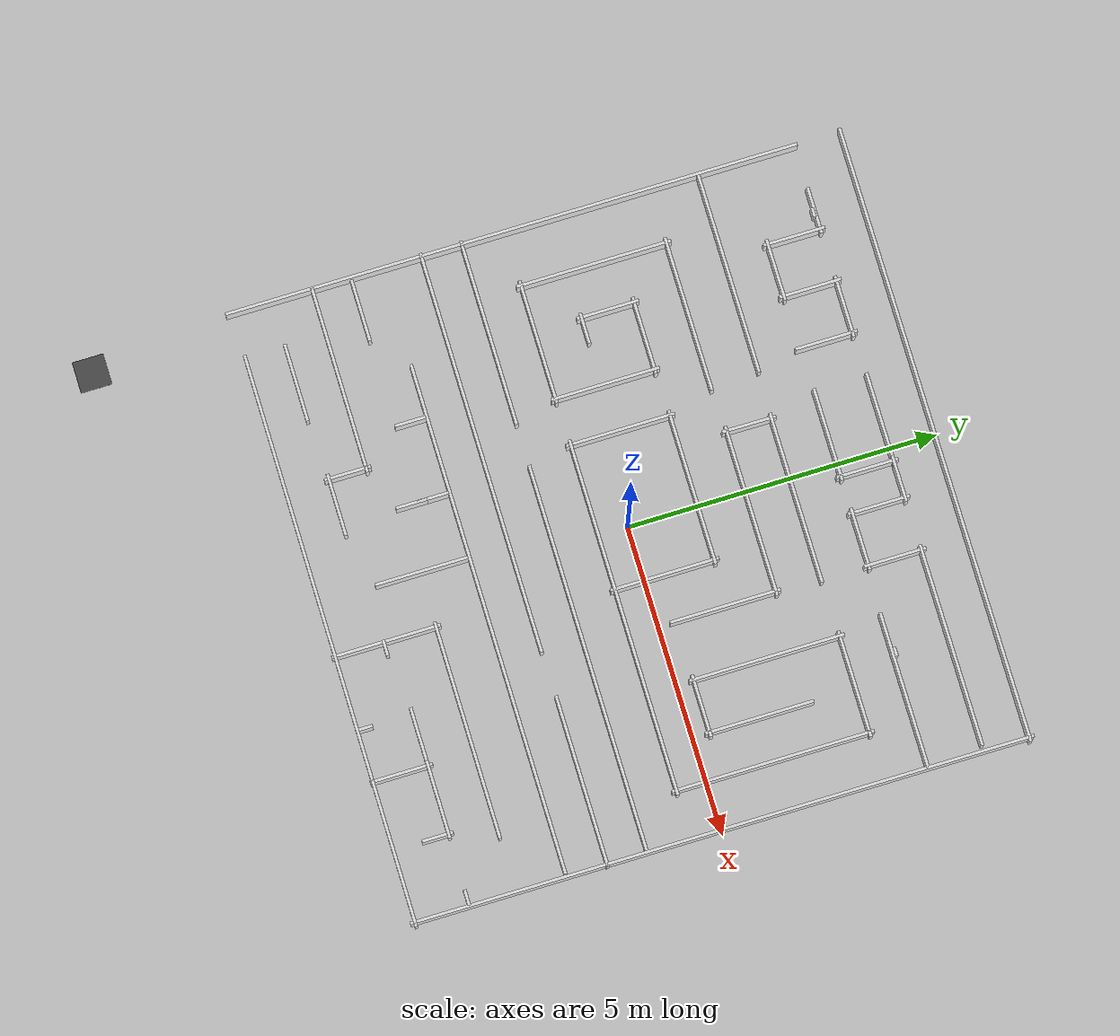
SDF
<sdf version="1.6">
 <world name="default">
  <model name="ground_plane">
   <static>1</static>
   <link name="link">
    <collision name="collision">
     <geometry><plane><normal>0 0 1</normal><size>100 100</size></plane></geometry>
     <surface><friction><ode><mu>100</mu><mu2>50</mu2></ode></friction></surface>
    </collision>
    <visual name="visual">
     <cast_shadows>0</cast_shadows>
     <geometry><plane><normal>0 0 1</normal><size>100 100</size></plane></geometry>
     <material>
      <script><uri>file://media/materials/scripts/gazebo.material</uri><name>Gazebo/Grey</name></script>
     </material>
    </visual>
   </link>
  </model>
  <model name="10x10_maze_2_body">
   <link name="Wall_102">
    <collision name="Wall_102_Collision">
     <geometry><box><size>3.25 0.05 0.4</size></box></geometry>
     <pose>0 0 0.2 0 -0 0</pose>
    </collision>
    <visual name="Wall_102_Visual">
     <pose>0 0 0.2 0 -0 0</pose>
     <geometry><box><size>3.25 0.05 0.4</size></box></geometry>
     <material>
      <script><uri>file://media/materials/scripts/gazebo.material</uri><name>Gazebo/White</name></script>
      <ambient>1 1 1 1</ambient>
     </material>
    </visual>
    <pose>4.15557 1.06055 0 0 0 -1.5708</pose>
   </link>
   <link name="Wall_103">
    <collision name="Wall_103_Collision">
     <geometry><box><size>5.75 0.05 0.4</size></box></geometry>
     <pose>0 0 0.2 0 -0 0</pose>
    </collision>
    <visual name="Wall_103_Visual">
     <pose>0 0 0.2 0 -0 0</pose>
     <geometry><box><size>5.75 0.05 0.4</size></box></geometry>
     <material>
      <script><uri>file://media/materials/scripts/gazebo.material</uri><name>Gazebo/White</name></script>
      <ambient>1 1 1 1</ambient>
     </material>
    </visual>
    <pose>1.35556 -0.489447 0 0 -0 3.14159</pose>
   </link>
   <link name="Wall_104">
    <collision name="Wall_104_Collision">
     <geometry><box><size>1.75 0.05 0.4</size></box></geometry>
     <pose>0 0 0.2 0 -0 0</pose>
    </collision>
    <visual name="Wall_104_Visual">
     <pose>0 0 0.2 0 -0 0</pose>
     <geometry><box><size>1.75 0.05 0.4</size></box></geometry>
     <material>
      <script><uri>file://media/materials/scripts/gazebo.material</uri><name>Gazebo/White</name></script>
      <ambient>1 1 1 1</ambient>
     </material>
    </visual>
    <pose>-1.44443 0.310553 0 0 -0 1.5708</pose>
   </link>
   <link name="Wall_105">
    <collision name="Wall_105_Collision">
     <geometry><box><size>2.5 0.05 0.4</size></box></geometry>
     <pose>0 0 0.2 0 -0 0</pose>
    </collision>
    <visual name="Wall_105_Visual">
     <pose>0 0 0.2 0 -0 0</pose>
     <geometry><box><size>2.5 0.05 0.4</size></box></geometry>
     <material>
      <script><uri>file://media/materials/scripts/gazebo.material</uri><name>Gazebo/White</name></script>
      <ambient>1 1 1 1</ambient>
     </material>
    </visual>
    <pose>-0.269435 1.11055 0 0 -0 0</pose>
   </link>
   <link name="Wall_106">
    <collision name="Wall_106_Collision">
     <geometry><box><size>1.75 0.05 0.4</size></box></geometry>
     <pose>0 0 0.2 0 -0 0</pose>
    </collision>
    <visual name="Wall_106_Visual">
     <pose>0 0 0.2 0 -0 0</pose>
     <geometry><box><size>1.75 0.05 0.4</size></box></geometry>
     <material>
      <script><uri>file://media/materials/scripts/gazebo.material</uri><name>Gazebo/White</name></script>
      <ambient>1 1 1 1</ambient>
     </material>
    </visual>
    <pose>0.905565 0.310553 0 0 0 -1.5708</pose>
   </link>
   <link name="Wall_110">
    <collision name="Wall_110_Collision">
     <geometry><box><size>0.870658 0.05 0.4</size></box></geometry>
     <pose>0 0 0.2 0 -0 0</pose>
    </collision>
    <visual name="Wall_110_Visual">
     <pose>0 0 0.2 0 -0 0</pose>
     <geometry><box><size>0.870658 0.05 0.4</size></box></geometry>
     <material>
      <script><uri>file://media/materials/scripts/gazebo.material</uri><name>Gazebo/White</name></script>
      <ambient>1 1 1 1</ambient>
     </material>
    </visual>
    <pose>-0.950482 2.23502 0 0 -0 1.56348</pose>
   </link>
   <link name="Wall_114">
    <collision name="Wall_114_Collision">
     <geometry><box><size>2.75 0.05 0.4</size></box></geometry>
     <pose>0 0 0.2 0 -0 0</pose>
    </collision>
    <visual name="Wall_114_Visual">
     <pose>0 0 0.2 0 -0 0</pose>
     <geometry><box><size>2.75 0.05 0.4</size></box></geometry>
     <material>
      <script><uri>file://media/materials/scripts/gazebo.material</uri><name>Gazebo/White</name></script>
      <ambient>1 1 1 1</ambient>
     </material>
    </visual>
    <pose>0.346883 1.87471 0 0 -0 0</pose>
   </link>
   <link name="Wall_115">
    <collision name="Wall_115_Collision">
     <geometry><box><size>1.78042 0.05 0.4</size></box></geometry>
     <pose>0 0 0.2 0 -0 0</pose>
    </collision>
    <visual name="Wall_115_Visual">
     <pose>0 0 0.2 0 -0 0</pose>
     <geometry><box><size>1.78042 0.05 0.4</size></box></geometry>
     <material>
      <script><uri>file://media/materials/scripts/gazebo.material</uri><name>Gazebo/White</name></script>
      <ambient>1 1 1 1</ambient>
     </material>
    </visual>
    <pose>1.64688 1.0595 0 0 0 -1.5708</pose>
   </link>
   <link name="Wall_120">
    <collision name="Wall_120_Collision">
     <geometry><box><size>2.5 0.05 0.4</size></box></geometry>
     <pose>0 0 0.2 0 -0 0</pose>
    </collision>
    <visual name="Wall_120_Visual">
     <pose>0 0 0.2 0 -0 0</pose>
     <geometry><box><size>2.5 0.05 0.4</size></box></geometry>
     <material>
      <script><uri>file://media/materials/scripts/gazebo.material</uri><name>Gazebo/White</name></script>
      <ambient>1 1 1 1</ambient>
     </material>
    </visual>
    <pose>2.59579 1.43555 0 0 0 -1.5708</pose>
   </link>
   <link name="Wall_121">
    <collision name="Wall_121_Collision">
     <geometry><box><size>1 0.05 0.4</size></box></geometry>
     <pose>0 0 0.2 0 -0 0</pose>
    </collision>
    <visual name="Wall_121_Visual">
     <pose>0 0 0.2 0 -0 0</pose>
     <geometry><box><size>1 0.05 0.4</size></box></geometry>
     <material>
      <script><uri>file://media/materials/scripts/gazebo.material</uri><name>Gazebo/White</name></script>
      <ambient>1 1 1 1</ambient>
     </material>
    </visual>
    <pose>3.02079 0.260553 0 0 -0 0</pose>
   </link>
   <link name="Wall_122">
    <collision name="Wall_122_Collision">
     <geometry><box><size>1.75 0.05 0.4</size></box></geometry>
     <pose>0 0 0.2 0 -0 0</pose>
    </collision>
    <visual name="Wall_122_Visual">
     <pose>0 0 0.2 0 -0 0</pose>
     <geometry><box><size>1.75 0.05 0.4</size></box></geometry>
     <material>
      <script><uri>file://media/materials/scripts/gazebo.material</uri><name>Gazebo/White</name></script>
      <ambient>1 1 1 1</ambient>
     </material>
    </visual>
    <pose>3.44579 1.06055 0 0 -0 1.5708</pose>
   </link>
   <link name="Wall_124">
    <collision name="Wall_124_Collision">
     <geometry><box><size>2.5 0.05 0.4</size></box></geometry>
     <pose>0 0 0.2 0 -0 0</pose>
    </collision>
    <visual name="Wall_124_Visual">
     <pose>0 0 0.2 0 -0 0</pose>
     <geometry><box><size>2.5 0.05 0.4</size></box></geometry>
     <material>
      <script><uri>file://media/materials/scripts/gazebo.material</uri><name>Gazebo/White</name></script>
      <ambient>1 1 1 1</ambient>
     </material>
    </visual>
    <pose>-2.87335 1.84429 0 0 -0 3.14159</pose>
   </link>
   <link name="Wall_128">
    <collision name="Wall_128_Collision">
     <geometry><box><size>2.5 0.05 0.4</size></box></geometry>
     <pose>0 0 0.2 0 -0 0</pose>
    </collision>
    <visual name="Wall_128_Visual">
     <pose>0 0 0.2 0 -0 0</pose>
     <geometry><box><size>2.5 0.05 0.4</size></box></geometry>
     <material>
      <script><uri>file://media/materials/scripts/gazebo.material</uri><name>Gazebo/White</name></script>
      <ambient>1 1 1 1</ambient>
     </material>
    </visual>
    <pose>-4.04835 0.669288 0 0 0 -1.5708</pose>
   </link>
   <link name="Wall_129">
    <collision name="Wall_129_Collision">
     <geometry><box><size>2 0.05 0.4</size></box></geometry>
     <pose>0 0 0.2 0 -0 0</pose>
    </collision>
    <visual name="Wall_129_Visual">
     <pose>0 0 0.2 0 -0 0</pose>
     <geometry><box><size>2 0.05 0.4</size></box></geometry>
     <material>
      <script><uri>file://media/materials/scripts/gazebo.material</uri><name>Gazebo/White</name></script>
      <ambient>1 1 1 1</ambient>
     </material>
    </visual>
    <pose>-3.12335 -0.505712 0 0 -0 0</pose>
   </link>
   <link name="Wall_130">
    <collision name="Wall_130_Collision">
     <geometry><box><size>1.75 0.05 0.4</size></box></geometry>
     <pose>0 0 0.2 0 -0 0</pose>
    </collision>
    <visual name="Wall_130_Visual">
     <pose>0 0 0.2 0 -0 0</pose>
     <geometry><box><size>1.75 0.05 0.4</size></box></geometry>
     <material>
      <script><uri>file://media/materials/scripts/gazebo.material</uri><name>Gazebo/White</name></script>
      <ambient>1 1 1 1</ambient>
     </material>
    </visual>
    <pose>-2.19835 0.294288 0 0 -0 1.5708</pose>
   </link>
   <link name="Wall_131">
    <collision name="Wall_131_Collision">
     <geometry><box><size>1.25 0.05 0.4</size></box></geometry>
     <pose>0 0 0.2 0 -0 0</pose>
    </collision>
    <visual name="Wall_131_Visual">
     <pose>0 0 0.2 0 -0 0</pose>
     <geometry><box><size>1.25 0.05 0.4</size></box></geometry>
     <material>
      <script><uri>file://media/materials/scripts/gazebo.material</uri><name>Gazebo/White</name></script>
      <ambient>1 1 1 1</ambient>
     </material>
    </visual>
    <pose>-2.74835 1.09429 0 0 -0 3.14159</pose>
   </link>
   <link name="Wall_132">
    <collision name="Wall_132_Collision">
     <geometry><box><size>1 0.05 0.4</size></box></geometry>
     <pose>0 0 0.2 0 -0 0</pose>
    </collision>
    <visual name="Wall_132_Visual">
     <pose>0 0 0.2 0 -0 0</pose>
     <geometry><box><size>1 0.05 0.4</size></box></geometry>
     <material>
      <script><uri>file://media/materials/scripts/gazebo.material</uri><name>Gazebo/White</name></script>
      <ambient>1 1 1 1</ambient>
     </material>
    </visual>
    <pose>-3.29834 0.669288 0 0 0 -1.5708</pose>
   </link>
   <link name="Wall_133">
    <collision name="Wall_133_Collision">
     <geometry><box><size>0.5 0.05 0.4</size></box></geometry>
     <pose>0 0 0.2 0 -0 0</pose>
    </collision>
    <visual name="Wall_133_Visual">
     <pose>0 0 0.2 0 -0 0</pose>
     <geometry><box><size>0.5 0.05 0.4</size></box></geometry>
     <material>
      <script><uri>file://media/materials/scripts/gazebo.material</uri><name>Gazebo/White</name></script>
      <ambient>1 1 1 1</ambient>
     </material>
    </visual>
    <pose>-3.12335 0.244288 0 0 -0 0</pose>
   </link>
   <link name="Wall_135">
    <collision name="Wall_135_Collision">
     <geometry><box><size>3 0.05 0.4</size></box></geometry>
     <pose>0 0 0.2 0 -0 0</pose>
    </collision>
    <visual name="Wall_135_Visual">
     <pose>0 0 0.2 0 -0 0</pose>
     <geometry><box><size>3 0.05 0.4</size></box></geometry>
     <material>
      <script><uri>file://media/materials/scripts/gazebo.material</uri><name>Gazebo/White</name></script>
      <ambient>1 1 1 1</ambient>
     </material>
    </visual>
    <pose>-3.48239 -1.19746 0 0 -0 0</pose>
   </link>
   <link name="Wall_137">
    <collision name="Wall_137_Collision">
     <geometry><box><size>6.25 0.05 0.4</size></box></geometry>
     <pose>0 0 0.2 0 -0 0</pose>
    </collision>
    <visual name="Wall_137_Visual">
     <pose>0 0 0.2 0 -0 0</pose>
     <geometry><box><size>6.25 0.05 0.4</size></box></geometry>
     <material>
      <script><uri>file://media/materials/scripts/gazebo.material</uri><name>Gazebo/White</name></script>
      <ambient>1 1 1 1</ambient>
     </material>
    </visual>
    <pose>1.80792 -1.19746 0 0 -0 0</pose>
   </link>
   <link name="Wall_139">
    <collision name="Wall_139_Collision">
     <geometry><box><size>6.5 0.05 0.4</size></box></geometry>
     <pose>0 0 0.2 0 -0 0</pose>
    </collision>
    <visual name="Wall_139_Visual">
     <pose>0 0 0.2 0 -0 0</pose>
     <geometry><box><size>6.5 0.05 0.4</size></box></geometry>
     <material>
      <script><uri>file://media/materials/scripts/gazebo.material</uri><name>Gazebo/White</name></script>
      <ambient>1 1 1 1</ambient>
     </material>
    </visual>
    <pose>-1.73239 -1.85144 0 0 -0 0</pose>
   </link>
   <link name="Wall_141">
    <collision name="Wall_141_Collision">
     <geometry><box><size>2.75 0.05 0.4</size></box></geometry>
     <pose>0 0 0.2 0 -0 0</pose>
    </collision>
    <visual name="Wall_141_Visual">
     <pose>0 0 0.2 0 -0 0</pose>
     <geometry><box><size>2.75 0.05 0.4</size></box></geometry>
     <material>
      <script><uri>file://media/materials/scripts/gazebo.material</uri><name>Gazebo/White</name></script>
      <ambient>1 1 1 1</ambient>
     </material>
    </visual>
    <pose>3.60156 -1.83623 0 0 -0 0</pose>
   </link>
   <link name="Wall_145">
    <collision name="Wall_145_Collision">
     <geometry><box><size>8.25 0.05 0.4</size></box></geometry>
     <pose>0 0 0.2 0 -0 0</pose>
    </collision>
    <visual name="Wall_145_Visual">
     <pose>0 0 0.2 0 -0 0</pose>
     <geometry><box><size>8.25 0.05 0.4</size></box></geometry>
     <material>
      <script><uri>file://media/materials/scripts/gazebo.material</uri><name>Gazebo/White</name></script>
      <ambient>1 1 1 1</ambient>
     </material>
    </visual>
    <pose>0.769944 -2.49021 0 0 -0 0</pose>
   </link>
   <link name="Wall_153">
    <collision name="Wall_153_Collision">
     <geometry><box><size>1.25 0.05 0.4</size></box></geometry>
     <pose>0 0 0.2 0 -0 0</pose>
    </collision>
    <visual name="Wall_153_Visual">
     <pose>0 0 0.2 0 -0 0</pose>
     <geometry><box><size>1.25 0.05 0.4</size></box></geometry>
     <material>
      <script><uri>file://media/materials/scripts/gazebo.material</uri><name>Gazebo/White</name></script>
      <ambient>1 1 1 1</ambient>
     </material>
    </visual>
    <pose>-3.59695 -4.26963 0 0 -0 0</pose>
   </link>
   <link name="Wall_156">
    <collision name="Wall_156_Collision">
     <geometry><box><size>3 0.05 0.4</size></box></geometry>
     <pose>0 0 0.2 0 -0 0</pose>
    </collision>
    <visual name="Wall_156_Visual">
     <pose>0 0 0.2 0 -0 0</pose>
     <geometry><box><size>3 0.05 0.4</size></box></geometry>
     <material>
      <script><uri>file://media/materials/scripts/gazebo.material</uri><name>Gazebo/White</name></script>
      <ambient>1 1 1 1</ambient>
     </material>
    </visual>
    <pose>-3.43676 -3.61565 0 0 -0 0</pose>
   </link>
   <link name="Wall_157">
    <collision name="Wall_157_Collision">
     <geometry><box><size>0.75 0.05 0.4</size></box></geometry>
     <pose>0 0 0.2 0 -0 0</pose>
    </collision>
    <visual name="Wall_157_Visual">
     <pose>0 0 0.2 0 -0 0</pose>
     <geometry><box><size>0.75 0.05 0.4</size></box></geometry>
     <material>
      <script><uri>file://media/materials/scripts/gazebo.material</uri><name>Gazebo/White</name></script>
      <ambient>1 1 1 1</ambient>
     </material>
    </visual>
    <pose>-2.01177 -3.91565 0 0 0 -1.5708</pose>
   </link>
   <link name="Wall_162">
    <collision name="Wall_162_Collision">
     <geometry><box><size>1 0.05 0.4</size></box></geometry>
     <pose>0 0 0.2 0 -0 0</pose>
    </collision>
    <visual name="Wall_162_Visual">
     <pose>0 0 0.2 0 -0 0</pose>
     <geometry><box><size>1 0.05 0.4</size></box></geometry>
     <material>
      <script><uri>file://media/materials/scripts/gazebo.material</uri><name>Gazebo/White</name></script>
      <ambient>1 1 1 1</ambient>
     </material>
    </visual>
    <pose>-4.39114 -2.99209 0 0 -0 0</pose>
   </link>
   <link name="Wall_164">
    <collision name="Wall_164_Collision">
     <geometry><box><size>0.5 0.05 0.4</size></box></geometry>
     <pose>0 0 0.2 0 -0 0</pose>
    </collision>
    <visual name="Wall_164_Visual">
     <pose>0 0 0.2 0 -0 0</pose>
     <geometry><box><size>0.5 0.05 0.4</size></box></geometry>
     <material>
      <script><uri>file://media/materials/scripts/gazebo.material</uri><name>Gazebo/White</name></script>
      <ambient>1 1 1 1</ambient>
     </material>
    </visual>
    <pose>-2.50441 -2.75646 0 0 0 -1.5708</pose>
   </link>
   <link name="Wall_166">
    <collision name="Wall_166_Collision">
     <geometry><box><size>0.5 0.05 0.4</size></box></geometry>
     <pose>0 0 0.2 0 -0 0</pose>
    </collision>
    <visual name="Wall_166_Visual">
     <pose>0 0 0.2 0 -0 0</pose>
     <geometry><box><size>0.5 0.05 0.4</size></box></geometry>
     <material>
      <script><uri>file://media/materials/scripts/gazebo.material</uri><name>Gazebo/White</name></script>
      <ambient>1 1 1 1</ambient>
     </material>
    </visual>
    <pose>-1.2725 -2.75646 0 0 0 -1.5708</pose>
   </link>
   <link name="Wall_167">
    <collision name="Wall_167_Collision">
     <geometry><box><size>0.5 0.05 0.4</size></box></geometry>
     <pose>0 0 0.2 0 -0 0</pose>
    </collision>
    <visual name="Wall_167_Visual">
     <pose>0 0 0.2 0 -0 0</pose>
     <geometry><box><size>0.5 0.05 0.4</size></box></geometry>
     <material>
      <script><uri>file://media/materials/scripts/gazebo.material</uri><name>Gazebo/White</name></script>
      <ambient>1 1 1 1</ambient>
     </material>
    </visual>
    <pose>-1.2725 -3.10646 0 0 0 -1.5708</pose>
   </link>
   <link name="Wall_169">
    <collision name="Wall_169_Collision">
     <geometry><box><size>1.5 0.05 0.4</size></box></geometry>
     <pose>0 0 0.2 0 -0 0</pose>
    </collision>
    <visual name="Wall_169_Visual">
     <pose>0 0 0.2 0 -0 0</pose>
     <geometry><box><size>1.5 0.05 0.4</size></box></geometry>
     <material>
      <script><uri>file://media/materials/scripts/gazebo.material</uri><name>Gazebo/White</name></script>
      <ambient>1 1 1 1</ambient>
     </material>
    </visual>
    <pose>-0.223097 -3.25646 0 0 0 -1.5708</pose>
   </link>
   <link name="Wall_171">
    <collision name="Wall_171_Collision">
     <geometry><box><size>1 0.05 0.4</size></box></geometry>
     <pose>0 0 0.2 0 -0 0</pose>
    </collision>
    <visual name="Wall_171_Visual">
     <pose>0 0 0.2 0 -0 0</pose>
     <geometry><box><size>1 0.05 0.4</size></box></geometry>
     <material>
      <script><uri>file://media/materials/scripts/gazebo.material</uri><name>Gazebo/White</name></script>
      <ambient>1 1 1 1</ambient>
     </material>
    </visual>
    <pose>-1.58677 -4.21565 0 0 -0 0</pose>
   </link>
   <link name="Wall_173">
    <collision name="Wall_173_Collision">
     <geometry><box><size>1.75 0.05 0.4</size></box></geometry>
     <pose>0 0 0.2 0 -0 0</pose>
    </collision>
    <visual name="Wall_173_Visual">
     <pose>0 0 0.2 0 -0 0</pose>
     <geometry><box><size>1.75 0.05 0.4</size></box></geometry>
     <material>
      <script><uri>file://media/materials/scripts/gazebo.material</uri><name>Gazebo/White</name></script>
      <ambient>1 1 1 1</ambient>
     </material>
    </visual>
    <pose>0.659011 -4.09319 0 0 -0 1.5708</pose>
   </link>
   <link name="Wall_174">
    <collision name="Wall_174_Collision">
     <geometry><box><size>3.5 0.05 0.4</size></box></geometry>
     <pose>0 0 0.2 0 -0 0</pose>
    </collision>
    <visual name="Wall_174_Visual">
     <pose>0 0 0.2 0 -0 0</pose>
     <geometry><box><size>3.5 0.05 0.4</size></box></geometry>
     <material>
      <script><uri>file://media/materials/scripts/gazebo.material</uri><name>Gazebo/White</name></script>
      <ambient>1 1 1 1</ambient>
     </material>
    </visual>
    <pose>2.33401 -3.29319 0 0 -0 0</pose>
   </link>
   <link name="Wall_176">
    <collision name="Wall_176_Collision">
     <geometry><box><size>1 0.05 0.4</size></box></geometry>
     <pose>0 0 0.2 0 -0 0</pose>
    </collision>
    <visual name="Wall_176_Visual">
     <pose>0 0 0.2 0 -0 0</pose>
     <geometry><box><size>1 0.05 0.4</size></box></geometry>
     <material>
      <script><uri>file://media/materials/scripts/gazebo.material</uri><name>Gazebo/White</name></script>
      <ambient>1 1 1 1</ambient>
     </material>
    </visual>
    <pose>2.68177 -4.45298 0 0 -0 1.5708</pose>
   </link>
   <link name="Wall_186">
    <collision name="Wall_186_Collision">
     <geometry><box><size>0.25 0.05 0.4</size></box></geometry>
     <pose>0 0 0.2 0 -0 0</pose>
    </collision>
    <visual name="Wall_186_Visual">
     <pose>0 0 0.2 0 -0 0</pose>
     <geometry><box><size>0.25 0.05 0.4</size></box></geometry>
     <material>
      <script><uri>file://media/materials/scripts/gazebo.material</uri><name>Gazebo/White</name></script>
      <ambient>1 1 1 1</ambient>
     </material>
    </visual>
    <pose>0.754637 -4.13275 0 0 -0 0</pose>
   </link>
   <link name="Wall_188">
    <collision name="Wall_188_Collision">
     <geometry><box><size>0.25 0.05 0.4</size></box></geometry>
     <pose>0 0 0.2 0 -0 0</pose>
    </collision>
    <visual name="Wall_188_Visual">
     <pose>0 0 0.2 0 -0 0</pose>
     <geometry><box><size>0.25 0.05 0.4</size></box></geometry>
     <material>
      <script><uri>file://media/materials/scripts/gazebo.material</uri><name>Gazebo/White</name></script>
      <ambient>1 1 1 1</ambient>
     </material>
    </visual>
    <pose>4.80663 -4.0415 0 0 -0 3.14159</pose>
   </link>
   <link name="Wall_190">
    <collision name="Wall_190_Collision">
     <geometry><box><size>1 0.05 0.4</size></box></geometry>
     <pose>0 0 0.2 0 -0 0</pose>
    </collision>
    <visual name="Wall_190_Visual">
     <pose>0 0 0.2 0 -0 0</pose>
     <geometry><box><size>1 0.05 0.4</size></box></geometry>
     <material>
      <script><uri>file://media/materials/scripts/gazebo.material</uri><name>Gazebo/White</name></script>
      <ambient>1 1 1 1</ambient>
     </material>
    </visual>
    <pose>2.25677 -4.02798 0 0 -0 3.14159</pose>
   </link>
   <link name="Wall_192">
    <collision name="Wall_192_Collision">
     <geometry><box><size>1.25 0.05 0.4</size></box></geometry>
     <pose>0 0 0.2 0 -0 0</pose>
    </collision>
    <visual name="Wall_192_Visual">
     <pose>0 0 0.2 0 -0 0</pose>
     <geometry><box><size>1.25 0.05 0.4</size></box></geometry>
     <material>
      <script><uri>file://media/materials/scripts/gazebo.material</uri><name>Gazebo/White</name></script>
      <ambient>1 1 1 1</ambient>
     </material>
    </visual>
    <pose>3.23177 -4.02798 0 0 -0 0</pose>
   </link>
   <link name="Wall_194">
    <collision name="Wall_194_Collision">
     <geometry><box><size>0.25 0.05 0.4</size></box></geometry>
     <pose>0 0 0.2 0 -0 0</pose>
    </collision>
    <visual name="Wall_194_Visual">
     <pose>0 0 0.2 0 -0 0</pose>
     <geometry><box><size>0.25 0.05 0.4</size></box></geometry>
     <material>
      <script><uri>file://media/materials/scripts/gazebo.material</uri><name>Gazebo/White</name></script>
      <ambient>1 1 1 1</ambient>
     </material>
    </visual>
    <pose>1.85349 -4.78989 0 0 -0 1.5708</pose>
   </link>
   <link name="Wall_196">
    <collision name="Wall_196_Collision">
     <geometry><box><size>0.5 0.05 0.4</size></box></geometry>
     <pose>0 0 0.2 0 -0 0</pose>
    </collision>
    <visual name="Wall_196_Visual">
     <pose>0 0 0.2 0 -0 0</pose>
     <geometry><box><size>0.5 0.05 0.4</size></box></geometry>
     <material>
      <script><uri>file://media/materials/scripts/gazebo.material</uri><name>Gazebo/White</name></script>
      <ambient>1 1 1 1</ambient>
     </material>
    </visual>
    <pose>3.78178 -4.20298 0 0 0 -1.5708</pose>
   </link>
   <link name="Wall_26">
    <collision name="Wall_26_Collision">
     <geometry><box><size>10 0.05 0.4</size></box></geometry>
     <pose>0 0 0.2 0 -0 0</pose>
    </collision>
    <visual name="Wall_26_Visual">
     <pose>0 0 0.2 0 -0 0</pose>
     <geometry><box><size>10 0.05 0.4</size></box></geometry>
     <material>
      <script><uri>file://media/materials/scripts/gazebo.material</uri><name>Gazebo/White</name></script>
      <ambient>1 1 1 1</ambient>
     </material>
    </visual>
    <pose>0.011565 4.93839 0 0 -0 0</pose>
   </link>
   <link name="Wall_27">
    <collision name="Wall_27_Collision">
     <geometry><box><size>10 0.05 0.4</size></box></geometry>
     <pose>0 0 0.2 0 -0 0</pose>
    </collision>
    <visual name="Wall_27_Visual">
     <pose>0 0 0.2 0 -0 0</pose>
     <geometry><box><size>10 0.05 0.4</size></box></geometry>
     <material>
      <script><uri>file://media/materials/scripts/gazebo.material</uri><name>Gazebo/White</name></script>
      <ambient>1 1 1 1</ambient>
     </material>
    </visual>
    <pose>4.93656 0.013385 0 0 0 -1.5708</pose>
   </link>
   <link name="Wall_30">
    <collision name="Wall_30_Collision">
     <geometry><box><size>9.25 0.05 0.4</size></box></geometry>
     <pose>0 0 0.2 0 -0 0</pose>
    </collision>
    <visual name="Wall_30_Visual">
     <pose>0 0 0.2 0 -0 0</pose>
     <geometry><box><size>9.25 0.05 0.4</size></box></geometry>
     <material>
      <script><uri>file://media/materials/scripts/gazebo.material</uri><name>Gazebo/White</name></script>
      <ambient>1 1 1 1</ambient>
     </material>
    </visual>
    <pose>0.386565 -4.91162 0 0 -0 3.14159</pose>
   </link>
   <link name="Wall_32">
    <collision name="Wall_32_Collision">
     <geometry><box><size>9.25 0.05 0.4</size></box></geometry>
     <pose>0 0 0.2 0 -0 0</pose>
    </collision>
    <visual name="Wall_32_Visual">
     <pose>0 0 0.2 0 -0 0</pose>
     <geometry><box><size>9.25 0.05 0.4</size></box></geometry>
     <material>
      <script><uri>file://media/materials/scripts/gazebo.material</uri><name>Gazebo/White</name></script>
      <ambient>1 1 1 1</ambient>
     </material>
    </visual>
    <pose>-4.93656 -0.388385 0 0 -0 1.5708</pose>
   </link>
   <link name="Wall_36">
    <collision name="Wall_36_Collision">
     <geometry><box><size>0.15 0.05 0.4</size></box></geometry>
     <pose>0 0 0.2 0 -0 0</pose>
    </collision>
    <visual name="Wall_36_Visual">
     <pose>0 0 0.2 0 -0 0</pose>
     <geometry><box><size>0.15 0.05 0.4</size></box></geometry>
     <material>
      <script><uri>file://media/materials/scripts/gazebo.material</uri><name>Gazebo/White</name></script>
      <ambient>1 1 1 1</ambient>
     </material>
    </visual>
    <pose>-3.83656 4.16162 0 0 -0 0</pose>
   </link>
   <link name="Wall_50">
    <collision name="Wall_50_Collision">
     <geometry><box><size>1 0.05 0.4</size></box></geometry>
     <pose>0 0 0.2 0 -0 0</pose>
    </collision>
    <visual name="Wall_50_Visual">
     <pose>0 0 0.2 0 -0 0</pose>
     <geometry><box><size>1 0.05 0.4</size></box></geometry>
     <material>
      <script><uri>file://media/materials/scripts/gazebo.material</uri><name>Gazebo/White</name></script>
      <ambient>1 1 1 1</ambient>
     </material>
    </visual>
    <pose>-3.13787 3.34011 0 0 -0 0</pose>
   </link>
   <link name="Wall_51">
    <collision name="Wall_51_Collision">
     <geometry><box><size>1 0.05 0.4</size></box></geometry>
     <pose>0 0 0.2 0 -0 0</pose>
    </collision>
    <visual name="Wall_51_Visual">
     <pose>0 0 0.2 0 -0 0</pose>
     <geometry><box><size>1 0.05 0.4</size></box></geometry>
     <material>
      <script><uri>file://media/materials/scripts/gazebo.material</uri><name>Gazebo/White</name></script>
      <ambient>1 1 1 1</ambient>
     </material>
    </visual>
    <pose>-2.71287 3.76511 0 0 -0 1.5708</pose>
   </link>
   <link name="Wall_52">
    <collision name="Wall_52_Collision">
     <geometry><box><size>1 0.05 0.4</size></box></geometry>
     <pose>0 0 0.2 0 -0 0</pose>
    </collision>
    <visual name="Wall_52_Visual">
     <pose>0 0 0.2 0 -0 0</pose>
     <geometry><box><size>1 0.05 0.4</size></box></geometry>
     <material>
      <script><uri>file://media/materials/scripts/gazebo.material</uri><name>Gazebo/White</name></script>
      <ambient>1 1 1 1</ambient>
     </material>
    </visual>
    <pose>-2.28787 4.19011 0 0 -0 0</pose>
   </link>
   <link name="Wall_53">
    <collision name="Wall_53_Collision">
     <geometry><box><size>1 0.05 0.4</size></box></geometry>
     <pose>0 0 0.2 0 -0 0</pose>
    </collision>
    <visual name="Wall_53_Visual">
     <pose>0 0 0.2 0 -0 0</pose>
     <geometry><box><size>1 0.05 0.4</size></box></geometry>
     <material>
      <script><uri>file://media/materials/scripts/gazebo.material</uri><name>Gazebo/White</name></script>
      <ambient>1 1 1 1</ambient>
     </material>
    </visual>
    <pose>-1.86287 3.76511 0 0 0 -1.5708</pose>
   </link>
   <link name="Wall_56">
    <collision name="Wall_56_Collision">
     <geometry><box><size>1.5 0.05 0.4</size></box></geometry>
     <pose>0 0 0.2 0 -0 0</pose>
    </collision>
    <visual name="Wall_56_Visual">
     <pose>0 0 0.2 0 -0 0</pose>
     <geometry><box><size>1.5 0.05 0.4</size></box></geometry>
     <material>
      <script><uri>file://media/materials/scripts/gazebo.material</uri><name>Gazebo/White</name></script>
      <ambient>1 1 1 1</ambient>
     </material>
    </visual>
    <pose>-0.444597 4.2076 0 0 -0 0</pose>
   </link>
   <link name="Wall_57">
    <collision name="Wall_57_Collision">
     <geometry><box><size>1 0.05 0.4</size></box></geometry>
     <pose>0 0 0.2 0 -0 0</pose>
    </collision>
    <visual name="Wall_57_Visual">
     <pose>0 0 0.2 0 -0 0</pose>
     <geometry><box><size>1 0.05 0.4</size></box></geometry>
     <material>
      <script><uri>file://media/materials/scripts/gazebo.material</uri><name>Gazebo/White</name></script>
      <ambient>1 1 1 1</ambient>
     </material>
    </visual>
    <pose>0.230403 3.7826 0 0 0 -1.5708</pose>
   </link>
   <link name="Wall_58">
    <collision name="Wall_58_Collision">
     <geometry><box><size>1.5 0.05 0.4</size></box></geometry>
     <pose>0 0 0.2 0 -0 0</pose>
    </collision>
    <visual name="Wall_58_Visual">
     <pose>0 0 0.2 0 -0 0</pose>
     <geometry><box><size>1.5 0.05 0.4</size></box></geometry>
     <material>
      <script><uri>file://media/materials/scripts/gazebo.material</uri><name>Gazebo/White</name></script>
      <ambient>1 1 1 1</ambient>
     </material>
    </visual>
    <pose>-0.444597 3.3576 0 0 -0 3.14159</pose>
   </link>
   <link name="Wall_64">
    <collision name="Wall_64_Collision">
     <geometry><box><size>0.15 0.05 0.4</size></box></geometry>
     <pose>0 0 0.2 0 -0 0</pose>
    </collision>
    <visual name="Wall_64_Visual">
     <pose>0 0 0.2 0 -0 0</pose>
     <geometry><box><size>0.15 0.05 0.4</size></box></geometry>
     <material>
      <script><uri>file://media/materials/scripts/gazebo.material</uri><name>Gazebo/White</name></script>
      <ambient>1 1 1 1</ambient>
     </material>
    </visual>
    <pose>3.0804 3.3576 0 0 -0 0</pose>
   </link>
   <link name="Wall_70">
    <collision name="Wall_70_Collision">
     <geometry><box><size>0.75 0.05 0.4</size></box></geometry>
     <pose>0 0 0.2 0 -0 0</pose>
    </collision>
    <visual name="Wall_70_Visual">
     <pose>0 0 0.2 0 -0 0</pose>
     <geometry><box><size>0.75 0.05 0.4</size></box></geometry>
     <material>
      <script><uri>file://media/materials/scripts/gazebo.material</uri><name>Gazebo/White</name></script>
      <ambient>1 1 1 1</ambient>
     </material>
    </visual>
    <pose>0.530403 4.2076 0 0 -0 0</pose>
   </link>
   <link name="Wall_71">
    <collision name="Wall_71_Collision">
     <geometry><box><size>1 0.05 0.4</size></box></geometry>
     <pose>0 0 0.2 0 -0 0</pose>
    </collision>
    <visual name="Wall_71_Visual">
     <pose>0 0 0.2 0 -0 0</pose>
     <geometry><box><size>1 0.05 0.4</size></box></geometry>
     <material>
      <script><uri>file://media/materials/scripts/gazebo.material</uri><name>Gazebo/White</name></script>
      <ambient>1 1 1 1</ambient>
     </material>
    </visual>
    <pose>0.830403 3.7826 0 0 0 -1.5708</pose>
   </link>
   <link name="Wall_74">
    <collision name="Wall_74_Collision">
     <geometry><box><size>1 0.05 0.4</size></box></geometry>
     <pose>0 0 0.2 0 -0 0</pose>
    </collision>
    <visual name="Wall_74_Visual">
     <pose>0 0 0.2 0 -0 0</pose>
     <geometry><box><size>1 0.05 0.4</size></box></geometry>
     <material>
      <script><uri>file://media/materials/scripts/gazebo.material</uri><name>Gazebo/White</name></script>
      <ambient>1 1 1 1</ambient>
     </material>
    </visual>
    <pose>1.2554 3.3576 0 0 -0 0</pose>
   </link>
   <link name="Wall_76">
    <collision name="Wall_76_Collision">
     <geometry><box><size>1 0.05 0.4</size></box></geometry>
     <pose>0 0 0.2 0 -0 0</pose>
    </collision>
    <visual name="Wall_76_Visual">
     <pose>0 0 0.2 0 -0 0</pose>
     <geometry><box><size>1 0.05 0.4</size></box></geometry>
     <material>
      <script><uri>file://media/materials/scripts/gazebo.material</uri><name>Gazebo/White</name></script>
      <ambient>1 1 1 1</ambient>
     </material>
    </visual>
    <pose>1.6804 3.7826 0 0 -0 1.5708</pose>
   </link>
   <link name="Wall_77">
    <collision name="Wall_77_Collision">
     <geometry><box><size>3.25 0.05 0.4</size></box></geometry>
     <pose>0 0 0.2 0 -0 0</pose>
    </collision>
    <visual name="Wall_77_Visual">
     <pose>0 0 0.2 0 -0 0</pose>
     <geometry><box><size>3.25 0.05 0.4</size></box></geometry>
     <material>
      <script><uri>file://media/materials/scripts/gazebo.material</uri><name>Gazebo/White</name></script>
      <ambient>1 1 1 1</ambient>
     </material>
    </visual>
    <pose>3.2304 4.2076 0 0 -0 0</pose>
   </link>
   <link name="Wall_79">
    <collision name="Wall_79_Collision">
     <geometry><box><size>2.5 0.05 0.4</size></box></geometry>
     <pose>0 0 0.2 0 -0 0</pose>
    </collision>
    <visual name="Wall_79_Visual">
     <pose>0 0 0.2 0 -0 0</pose>
     <geometry><box><size>2.5 0.05 0.4</size></box></geometry>
     <material>
      <script><uri>file://media/materials/scripts/gazebo.material</uri><name>Gazebo/White</name></script>
      <ambient>1 1 1 1</ambient>
     </material>
    </visual>
    <pose>3.68689 3.31015 0 0 -0 3.14159</pose>
   </link>
   <link name="Wall_85">
    <collision name="Wall_85_Collision">
     <geometry><box><size>1 0.05 0.4</size></box></geometry>
     <pose>0 0 0.2 0 -0 0</pose>
    </collision>
    <visual name="Wall_85_Visual">
     <pose>0 0 0.2 0 -0 0</pose>
     <geometry><box><size>1 0.05 0.4</size></box></geometry>
     <material>
      <script><uri>file://media/materials/scripts/gazebo.material</uri><name>Gazebo/White</name></script>
      <ambient>1 1 1 1</ambient>
     </material>
    </visual>
    <pose>-3.56287 3.76511 0 0 -0 1.5708</pose>
   </link>
   <link name="Wall_86">
    <collision name="Wall_86_Collision">
     <geometry><box><size>0.75 0.05 0.4</size></box></geometry>
     <pose>0 0 0.2 0 -0 0</pose>
    </collision>
    <visual name="Wall_86_Visual">
     <pose>0 0 0.2 0 -0 0</pose>
     <geometry><box><size>0.75 0.05 0.4</size></box></geometry>
     <material>
      <script><uri>file://media/materials/scripts/gazebo.material</uri><name>Gazebo/White</name></script>
      <ambient>1 1 1 1</ambient>
     </material>
    </visual>
    <pose>-3.86287 4.19011 0 0 -0 3.14159</pose>
   </link>
   <link name="Wall_92">
    <collision name="Wall_92_Collision">
     <geometry><box><size>3.25 0.05 0.4</size></box></geometry>
     <pose>0 0 0.2 0 -0 0</pose>
    </collision>
    <visual name="Wall_92_Visual">
     <pose>0 0 0.2 0 -0 0</pose>
     <geometry><box><size>3.25 0.05 0.4</size></box></geometry>
     <material>
      <script><uri>file://media/materials/scripts/gazebo.material</uri><name>Gazebo/White</name></script>
      <ambient>1 1 1 1</ambient>
     </material>
    </visual>
    <pose>-3.3065 2.62576 0 0 -0 0</pose>
   </link>
   <link name="Wall_94">
    <collision name="Wall_94_Collision">
     <geometry><box><size>2.75 0.05 0.4</size></box></geometry>
     <pose>0 0 0.2 0 -0 0</pose>
    </collision>
    <visual name="Wall_94_Visual">
     <pose>0 0 0.2 0 -0 0</pose>
     <geometry><box><size>2.75 0.05 0.4</size></box></geometry>
     <material>
      <script><uri>file://media/materials/scripts/gazebo.material</uri><name>Gazebo/White</name></script>
      <ambient>1 1 1 1</ambient>
     </material>
    </visual>
    <pose>0.352153 2.59534 0 0 -0 0</pose>
   </link>
   <link name="Wall_99">
    <collision name="Wall_99_Collision">
     <geometry><box><size>1.70977 0.05 0.4</size></box></geometry>
     <pose>0 0 0.2 0 -0 0</pose>
    </collision>
    <visual name="Wall_99_Visual">
     <pose>0 0 0.2 0 -0 0</pose>
     <geometry><box><size>1.70977 0.05 0.4</size></box></geometry>
     <material>
      <script><uri>file://media/materials/scripts/gazebo.material</uri><name>Gazebo/White</name></script>
      <ambient>1 1 1 1</ambient>
     </material>
    </visual>
    <pose>3.37568 2.61055 0 0 -0 0</pose>
   </link>
   <static>1</static>
  </model>
  <model name="asphalt_green_plane_0">
   <static>1</static>
   <link name="link">
    <collision name="collision"><geometry><box><size>0.5 0.5 0.005</size></box></geometry></collision>
    <visual name="visual">
     <cast_shadows>0</cast_shadows>
     <geometry><box><size>0.5 0.5 0.005</size></box></geometry>
     <material>
      <script>
       <uri>model://asphalt_green_plane/materials/scripts</uri>
       <uri>model://asphalt_green_plane/materials/textures</uri>
       <name>vrc/asphalt_green</name>
      </script>
     </material>
    </visual>
   </link>
   <pose>-4.70767 -7.25261 0 0 -0 0</pose>
  </model>
 </world>
</sdf>
